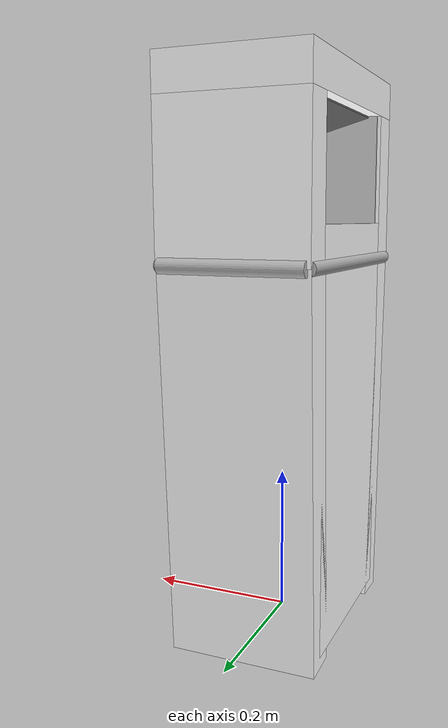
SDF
<?xml version="1.0" ?>
<sdf version="1.8">
  <model name="chair">
    <link name="link">
      <inertial>
        <mass>1.0</mass>
      </inertial>

      <collision name="top">
        <pose>0.0 0.0 0.725 0.0 0.0 0.0</pose>
        <geometry>
          <box>
            <size>0.2 0.35 0.05</size>
          </box>
        </geometry>
      </collision>

      <visual name="top_v">
        <pose>0.0 0.0 0.725 0.0 0.0 0.0</pose>
        <geometry>
          <box>
            <size>0.2 0.35 0.05</size>
          </box>
        </geometry>

        <material>
          <ambient>1.0 1.0 1.0 1</ambient>
          <diffuse>1.0 1.0 1.0 1</diffuse>
        </material>
      </visual>

      <collision name="cover">
        <pose>-0.01 0.0 0.68 0.0 -1.3 0.0</pose>
        <geometry>
          <box>
            <size>0.005 0.25 0.15</size>
          </box>
        </geometry>
      </collision>

      <visual name="cover_v">
        <pose>-0.01 0.0 0.68 0.0 -1.3 0.0</pose>
        <geometry>
          <box>
            <size>0.005 0.25 0.15</size>
          </box>
        </geometry>

        <material>
          <ambient>0.4 0.4 0.4 1</ambient>
          <diffuse>0.4 0.4 0.4 1</diffuse>
        </material>
      </visual>

      <collision name="left_side_low">
        <pose>0.0 0.135 0.245 -0.05 0.0 0.0</pose>
        <geometry>
          <box>
            <size>0.2 0.05 0.52</size>
          </box>
        </geometry>
      </collision>

      <visual name="left_side_low_v">
        <pose>0.0 0.135 0.245 -0.05 0.0 0.0</pose>
        <geometry>
          <box>
            <size>0.2 0.05 0.52</size>
          </box>
        </geometry>

        <material>
          <ambient>1.0 1.0 1.0 1</ambient>
          <diffuse>1.0 1.0 1.0 1</diffuse>
        </material>
      </visual>

      <collision name="left_side_upper">
        <pose>0.0 0.15 0.6 0.0 0.0 0.0</pose>
        <geometry>
          <box>
            <size>0.2 0.05 0.2</size>
          </box>
        </geometry>
      </collision>

      <visual name="left_side_upper_v">
        <pose>0.0 0.15 0.6 0.0 0.0 0.0</pose>
        <geometry>
          <box>
            <size>0.2 0.05 0.2</size>
          </box>
        </geometry>

        <material>
          <ambient>1.0 1.0 1.0 1</ambient>
          <diffuse>1.0 1.0 1.0 1</diffuse>
        </material>
      </visual>

      <collision name="right_side_low">
        <pose>0.0 -0.135 0.245 0.05 0.0 0.0</pose>
        <geometry>
          <box>
            <size>0.2 0.05 0.52</size>
          </box>
        </geometry>
      </collision>

      <visual name="right_side_low_v">
        <pose>0.0 -0.135 0.245 0.05 0.0 0.0</pose>
        <geometry>
          <box>
            <size>0.2 0.05 0.52</size>
          </box>
        </geometry>

        <material>
          <ambient>1.0 1.0 1.0 1</ambient>
          <diffuse>1.0 1.0 1.0 1</diffuse>
        </material>
      </visual>

      <collision name="right_side_upper">
        <pose>0.0 -0.15 0.6 0.0 0.0 0.0</pose>
        <geometry>
          <box>
            <size>0.2 0.05 0.2</size>
          </box>
        </geometry>
      </collision>

      <visual name="right_side_upper_v">
        <pose>0.0 -0.15 0.6 0.0 0.0 0.0</pose>
        <geometry>
          <box>
            <size>0.2 0.05 0.2</size>
          </box>
        </geometry>

        <material>
          <ambient>1.0 1.0 1.0 1</ambient>
          <diffuse>1.0 1.0 1.0 1</diffuse>
        </material>
      </visual>

      <collision name="back_plate">
        <pose>0.09 0.0 0.35 0.0 0.0 0.0</pose>
        <geometry>
          <box>
            <size>0.02 0.25 0.7</size>
          </box>
        </geometry>
      </collision>

      <visual name="back_plate_v">
        <pose>0.09 0.0 0.35 0.0 0.0 0.0</pose>
        <geometry>
          <box>
            <size>0.02 0.25 0.7</size>
          </box>
        </geometry>

        <material>
          <ambient>1.0 1.0 1.0 1</ambient>
          <diffuse>1.0 1.0 1.0 1</diffuse>
        </material>
      </visual>

      <collision name="front_plate">
        <pose>-0.09 0.0 0.275 0.0 0.0 0.0</pose>
        <geometry>
          <box>
            <size>0.02 0.25 0.55</size>
          </box>
        </geometry>
      </collision>

      <visual name="front_plate_v">
        <pose>-0.09 0.0 0.275 0.0 0.0 0.0</pose>
        <geometry>
          <box>
            <size>0.02 0.25 0.55</size>
          </box>
        </geometry>

        <material>
          <ambient>1.0 1.0 1.0 1</ambient>
          <diffuse>1.0 1.0 1.0 1</diffuse>
        </material>
      </visual>

      <visual name="dummy_1">
        <pose>0.0 -0.175 0.5 0.0 1.57 0.0</pose>
        <geometry>
          <cylinder>
            <radius>0.01</radius>
            <length>0.19</length>
          </cylinder>
        </geometry>

        <material>
          <ambient>0.7 0.7 0.7 1</ambient>
          <diffuse>0.7 0.7 0.7 1</diffuse>
        </material>
      </visual>

      <visual name="dummy_2">
        <pose>0.0 0.175 0.5 0.0 1.57 0.0</pose>
        <geometry>
          <cylinder>
            <radius>0.01</radius>
            <length>0.19</length>
          </cylinder>
        </geometry>

        <material>
          <ambient>0.7 0.7 0.7 1</ambient>
          <diffuse>0.7 0.7 0.7 1</diffuse>
        </material>
      </visual>

      <visual name="dummy_3">
        <pose>-0.095 0.0 0.5 0.0 1.57 1.57</pose>
        <geometry>
          <cylinder>
            <radius>0.01</radius>
            <length>0.34</length>
          </cylinder>
        </geometry>

        <material>
          <ambient>0.7 0.7 0.7 1</ambient>
          <diffuse>0.7 0.7 0.7 1</diffuse>
        </material>
      </visual>

      <visual name="dummy_4">
        <pose>0.095 0.0 0.5 0.0 1.57 1.57</pose>
        <geometry>
          <cylinder>
            <radius>0.01</radius>
            <length>0.34</length>
          </cylinder>
        </geometry>

        <material>
          <ambient>0.7 0.7 0.7 1</ambient>
          <diffuse>0.7 0.7 0.7 1</diffuse>
        </material>
      </visual>

      <visual name="dummy_5">
        <pose>0.08 0.0 0.37 0.0 0.0 0.0</pose>
        <geometry>
          <box>
            <size>0.005 0.292 0.72</size>
          </box>
        </geometry>

        <material>
          <ambient>0.8 0.8 0.8 1</ambient>
          <diffuse>0.8 0.8 0.8 1</diffuse>
        </material>
      </visual>

      <visual name="dummy_6">
        <pose>0.0 0.124 0.37 0.0 0.0 0.0</pose>
        <geometry>
          <box>
            <size>0.19 0.005 0.72</size>
          </box>
        </geometry>

        <material>
          <ambient>0.8 0.8 0.8 1</ambient>
          <diffuse>0.8 0.8 0.8 1</diffuse>
        </material>
      </visual>

      <visual name="dummy_7">
        <pose>0.0 -0.124 0.37 0.0 0.0 0.0</pose>
        <geometry>
          <box>
            <size>0.19 0.005 0.72</size>
          </box>
        </geometry>

        <material>
          <ambient>0.8 0.8 0.8 1</ambient>
          <diffuse>0.8 0.8 0.8 1</diffuse>
        </material>
      </visual>

      <visual name="dummy_8">
        <pose>0.0 0.1 0.3 -0.12 0.0 0.0</pose>
        <geometry>
          <box>
            <size>0.19 0.005 0.52</size>
          </box>
        </geometry>

        <material>
          <ambient>0.8 0.8 0.8 1</ambient>
          <diffuse>0.8 0.8 0.8 1</diffuse>
        </material>
      </visual>

      <visual name="dummy_9">
        <pose>0.0 -0.1 0.3 0.12 0.0 0.0</pose>
        <geometry>
          <box>
            <size>0.19 0.005 0.52</size>
          </box>
        </geometry>

        <material>
          <ambient>0.8 0.8 0.8 1</ambient>
          <diffuse>0.8 0.8 0.8 1</diffuse>
        </material>
      </visual>
    </link>
  </model>
</sdf>
